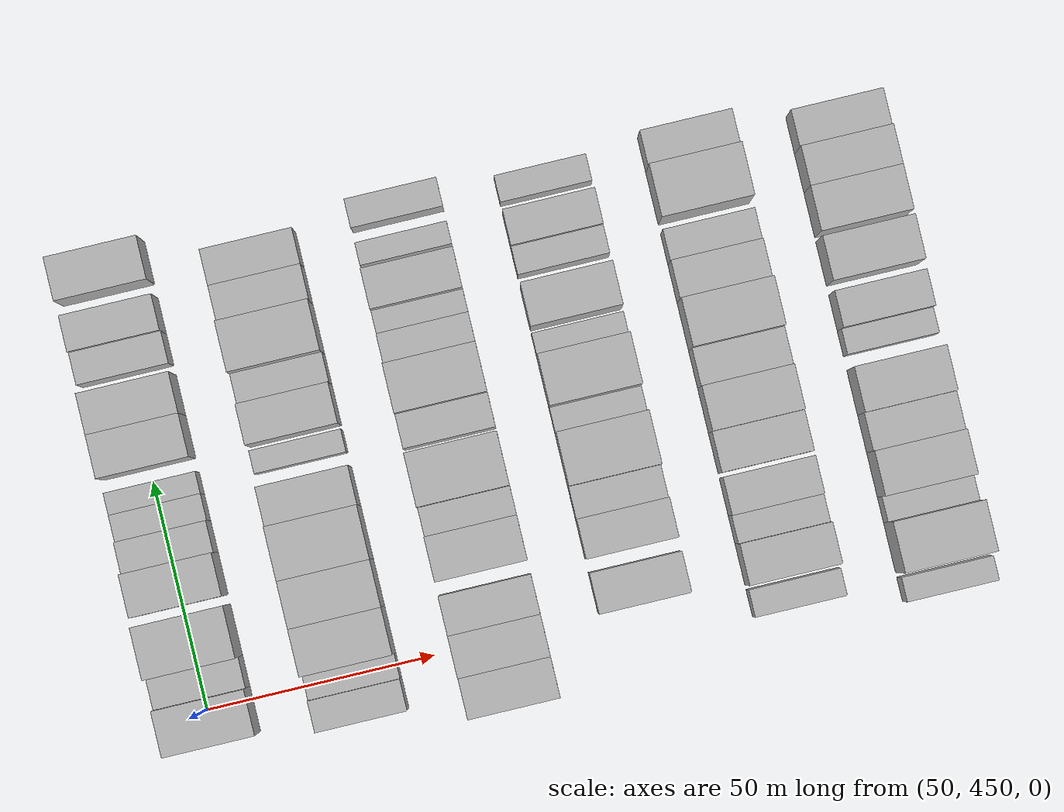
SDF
<sdf version="1.6">
 <world name="default">
  <model name="building_115">
   <static>1</static>
   <pose>50.0000 447.7930 0 0.000000 0.000000 0.000000</pose>
   <link name="link">
    <pose>0 0 10.50 0 0 0</pose>
    <collision name="collision"><geometry><box><size>20.0000 10.0180 21.0000</size></box></geometry></collision>
    <visual name="visual">
     <cast_shadows>0</cast_shadows>
     <geometry><box><size>20.0000 10.0180 21.0000</size></box></geometry>
     <material>
      <script>
       <uri>model://HANNAS_wall/materials/scripts</uri>
       <uri>model://HANNAS_wall/materials/textures</uri>
       <name>vrc/HANNAS_wall</name>
      </script>
     </material>
    </visual>
   </link>
  </model>
  <model name="building_116">
   <static>1</static>
   <pose>50.0000 456.1554 0 0.000000 0.000000 0.000000</pose>
   <link name="link">
    <pose>0 0 7.50 0 0 0</pose>
    <collision name="collision"><geometry><box><size>20.0000 6.7069 15.0000</size></box></geometry></collision>
    <visual name="visual">
     <cast_shadows>0</cast_shadows>
     <geometry><box><size>20.0000 6.7069 15.0000</size></box></geometry>
     <material>
      <script>
       <uri>model://HANNAS_wall/materials/scripts</uri>
       <uri>model://HANNAS_wall/materials/textures</uri>
       <name>vrc/HANNAS_wall</name>
      </script>
     </material>
    </visual>
   </link>
  </model>
  <model name="building_117">
   <static>1</static>
   <pose>50.0000 465.1629 0 0.000000 0.000000 0.000000</pose>
   <link name="link">
    <pose>0 0 12.00 0 0 0</pose>
    <collision name="collision"><geometry><box><size>20.0000 11.3081 24.0000</size></box></geometry></collision>
    <visual name="visual">
     <cast_shadows>0</cast_shadows>
     <geometry><box><size>20.0000 11.3081 24.0000</size></box></geometry>
     <material>
      <script>
       <uri>model://HANNAS_wall/materials/scripts</uri>
       <uri>model://HANNAS_wall/materials/textures</uri>
       <name>vrc/HANNAS_wall</name>
      </script>
     </material>
    </visual>
   </link>
  </model>
  <model name="building_118">
   <static>1</static>
   <pose>50.0000 477.5039 0 0.000000 0.000000 0.000000</pose>
   <link name="link">
    <pose>0 0 10.50 0 0 0</pose>
    <collision name="collision"><geometry><box><size>20.0000 9.3739 21.0000</size></box></geometry></collision>
    <visual name="visual">
     <cast_shadows>0</cast_shadows>
     <geometry><box><size>20.0000 9.3739 21.0000</size></box></geometry>
     <material>
      <script>
       <uri>model://HANNAS_wall/materials/scripts</uri>
       <uri>model://HANNAS_wall/materials/textures</uri>
       <name>vrc/HANNAS_wall</name>
      </script>
     </material>
    </visual>
   </link>
  </model>
  <model name="building_119">
   <static>1</static>
   <pose>50.0000 485.6570 0 0.000000 0.000000 0.000000</pose>
   <link name="link">
    <pose>0 0 7.50 0 0 0</pose>
    <collision name="collision"><geometry><box><size>20.0000 6.9324 15.0000</size></box></geometry></collision>
    <visual name="visual">
     <cast_shadows>0</cast_shadows>
     <geometry><box><size>20.0000 6.9324 15.0000</size></box></geometry>
     <material>
      <script>
       <uri>model://HANNAS_wall/materials/scripts</uri>
       <uri>model://HANNAS_wall/materials/textures</uri>
       <name>vrc/HANNAS_wall</name>
      </script>
     </material>
    </visual>
   </link>
  </model>
  <model name="building_120">
   <static>1</static>
   <pose>50.0000 492.0610 0 0.000000 0.000000 0.000000</pose>
   <link name="link">
    <pose>0 0 6.00 0 0 0</pose>
    <collision name="collision"><geometry><box><size>20.0000 5.8757 12.0000</size></box></geometry></collision>
    <visual name="visual">
     <cast_shadows>0</cast_shadows>
     <geometry><box><size>20.0000 5.8757 12.0000</size></box></geometry>
     <material>
      <script>
       <uri>model://HANNAS_wall/materials/scripts</uri>
       <uri>model://HANNAS_wall/materials/textures</uri>
       <name>vrc/HANNAS_wall</name>
      </script>
     </material>
    </visual>
   </link>
  </model>
  <model name="building_121">
   <static>1</static>
   <pose>50.0000 497.4059 0 0.000000 0.000000 0.000000</pose>
   <link name="link">
    <pose>0 0 6.00 0 0 0</pose>
    <collision name="collision"><geometry><box><size>20.0000 4.8141 12.0000</size></box></geometry></collision>
    <visual name="visual">
     <cast_shadows>0</cast_shadows>
     <geometry><box><size>20.0000 4.8141 12.0000</size></box></geometry>
     <material>
      <script>
       <uri>model://HANNAS_wall/materials/scripts</uri>
       <uri>model://HANNAS_wall/materials/textures</uri>
       <name>vrc/HANNAS_wall</name>
      </script>
     </material>
    </visual>
   </link>
  </model>
  <model name="building_122">
   <static>1</static>
   <pose>50.0000 507.5373 0 0.000000 0.000000 0.000000</pose>
   <link name="link">
    <pose>0 0 10.50 0 0 0</pose>
    <collision name="collision"><geometry><box><size>20.0000 9.4488 21.0000</size></box></geometry></collision>
    <visual name="visual">
     <cast_shadows>0</cast_shadows>
     <geometry><box><size>20.0000 9.4488 21.0000</size></box></geometry>
     <material>
      <script>
       <uri>model://HANNAS_wall/materials/scripts</uri>
       <uri>model://HANNAS_wall/materials/textures</uri>
       <name>vrc/HANNAS_wall</name>
      </script>
     </material>
    </visual>
   </link>
  </model>
  <model name="building_123">
   <static>1</static>
   <pose>50.0000 516.7333 0 0.000000 0.000000 0.000000</pose>
   <link name="link">
    <pose>0 0 10.50 0 0 0</pose>
    <collision name="collision"><geometry><box><size>20.0000 8.9432 21.0000</size></box></geometry></collision>
    <visual name="visual">
     <cast_shadows>0</cast_shadows>
     <geometry><box><size>20.0000 8.9432 21.0000</size></box></geometry>
     <material>
      <script>
       <uri>model://HANNAS_wall/materials/scripts</uri>
       <uri>model://HANNAS_wall/materials/textures</uri>
       <name>vrc/HANNAS_wall</name>
      </script>
     </material>
    </visual>
   </link>
  </model>
  <model name="building_124">
   <static>1</static>
   <pose>50.0000 526.7303 0 0.000000 0.000000 0.000000</pose>
   <link name="link">
    <pose>0 0 7.50 0 0 0</pose>
    <collision name="collision"><geometry><box><size>20.0000 7.0507 15.0000</size></box></geometry></collision>
    <visual name="visual">
     <cast_shadows>0</cast_shadows>
     <geometry><box><size>20.0000 7.0507 15.0000</size></box></geometry>
     <material>
      <script>
       <uri>model://HANNAS_wall/materials/scripts</uri>
       <uri>model://HANNAS_wall/materials/textures</uri>
       <name>vrc/HANNAS_wall</name>
      </script>
     </material>
    </visual>
   </link>
  </model>
  <model name="building_125">
   <static>1</static>
   <pose>50.0000 534.1992 0 0.000000 0.000000 0.000000</pose>
   <link name="link">
    <pose>0 0 9.00 0 0 0</pose>
    <collision name="collision"><geometry><box><size>20.0000 7.8872 18.0000</size></box></geometry></collision>
    <visual name="visual">
     <cast_shadows>0</cast_shadows>
     <geometry><box><size>20.0000 7.8872 18.0000</size></box></geometry>
     <material>
      <script>
       <uri>model://HANNAS_wall/materials/scripts</uri>
       <uri>model://HANNAS_wall/materials/textures</uri>
       <name>vrc/HANNAS_wall</name>
      </script>
     </material>
    </visual>
   </link>
  </model>
  <model name="building_126">
   <static>1</static>
   <pose>50.0000 545.8671 0 0.000000 0.000000 0.000000</pose>
   <link name="link">
    <pose>0 0 10.50 0 0 0</pose>
    <collision name="collision"><geometry><box><size>20.0000 9.4487 21.0000</size></box></geometry></collision>
    <visual name="visual">
     <cast_shadows>0</cast_shadows>
     <geometry><box><size>20.0000 9.4487 21.0000</size></box></geometry>
     <material>
      <script>
       <uri>model://HANNAS_wall/materials/scripts</uri>
       <uri>model://HANNAS_wall/materials/textures</uri>
       <name>vrc/HANNAS_wall</name>
      </script>
     </material>
    </visual>
   </link>
  </model>
  <model name="building_232">
   <static>1</static>
   <pose>82.0000 443.7060 0 0.000000 0.000000 0.000000</pose>
   <link name="link">
    <pose>0 0 7.50 0 0 0</pose>
    <collision name="collision"><geometry><box><size>20.0000 6.8889 15.0000</size></box></geometry></collision>
    <visual name="visual">
     <cast_shadows>0</cast_shadows>
     <geometry><box><size>20.0000 6.8889 15.0000</size></box></geometry>
     <material>
      <script>
       <uri>model://HANNAS_wall/materials/scripts</uri>
       <uri>model://HANNAS_wall/materials/textures</uri>
       <name>vrc/HANNAS_wall</name>
      </script>
     </material>
    </visual>
   </link>
  </model>
  <model name="building_233">
   <static>1</static>
   <pose>82.0000 449.8719 0 0.000000 0.000000 0.000000</pose>
   <link name="link">
    <pose>0 0 6.00 0 0 0</pose>
    <collision name="collision"><geometry><box><size>20.0000 5.4429 12.0000</size></box></geometry></collision>
    <visual name="visual">
     <cast_shadows>0</cast_shadows>
     <geometry><box><size>20.0000 5.4429 12.0000</size></box></geometry>
     <material>
      <script>
       <uri>model://HANNAS_wall/materials/scripts</uri>
       <uri>model://HANNAS_wall/materials/textures</uri>
       <name>vrc/HANNAS_wall</name>
      </script>
     </material>
    </visual>
   </link>
  </model>
  <model name="building_234">
   <static>1</static>
   <pose>82.0000 457.7127 0 0.000000 0.000000 0.000000</pose>
   <link name="link">
    <pose>0 0 12.00 0 0 0</pose>
    <collision name="collision"><geometry><box><size>20.0000 10.2387 24.0000</size></box></geometry></collision>
    <visual name="visual">
     <cast_shadows>0</cast_shadows>
     <geometry><box><size>20.0000 10.2387 24.0000</size></box></geometry>
     <material>
      <script>
       <uri>model://HANNAS_wall/materials/scripts</uri>
       <uri>model://HANNAS_wall/materials/textures</uri>
       <name>vrc/HANNAS_wall</name>
      </script>
     </material>
    </visual>
   </link>
  </model>
  <model name="building_235">
   <static>1</static>
   <pose>82.0000 467.9697 0 0.000000 0.000000 0.000000</pose>
   <link name="link">
    <pose>0 0 12.00 0 0 0</pose>
    <collision name="collision"><geometry><box><size>20.0000 10.2752 24.0000</size></box></geometry></collision>
    <visual name="visual">
     <cast_shadows>0</cast_shadows>
     <geometry><box><size>20.0000 10.2752 24.0000</size></box></geometry>
     <material>
      <script>
       <uri>model://HANNAS_wall/materials/scripts</uri>
       <uri>model://HANNAS_wall/materials/textures</uri>
       <name>vrc/HANNAS_wall</name>
      </script>
     </material>
    </visual>
   </link>
  </model>
  <model name="building_236">
   <static>1</static>
   <pose>82.0000 478.9772 0 0.000000 0.000000 0.000000</pose>
   <link name="link">
    <pose>0 0 12.00 0 0 0</pose>
    <collision name="collision"><geometry><box><size>20.0000 11.7399 24.0000</size></box></geometry></collision>
    <visual name="visual">
     <cast_shadows>0</cast_shadows>
     <geometry><box><size>20.0000 11.7399 24.0000</size></box></geometry>
     <material>
      <script>
       <uri>model://HANNAS_wall/materials/scripts</uri>
       <uri>model://HANNAS_wall/materials/textures</uri>
       <name>vrc/HANNAS_wall</name>
      </script>
     </material>
    </visual>
   </link>
  </model>
  <model name="building_237">
   <static>1</static>
   <pose>82.0000 489.1119 0 0.000000 0.000000 0.000000</pose>
   <link name="link">
    <pose>0 0 10.50 0 0 0</pose>
    <collision name="collision"><geometry><box><size>20.0000 8.5294 21.0000</size></box></geometry></collision>
    <visual name="visual">
     <cast_shadows>0</cast_shadows>
     <geometry><box><size>20.0000 8.5294 21.0000</size></box></geometry>
     <material>
      <script>
       <uri>model://HANNAS_wall/materials/scripts</uri>
       <uri>model://HANNAS_wall/materials/textures</uri>
       <name>vrc/HANNAS_wall</name>
      </script>
     </material>
    </visual>
   </link>
  </model>
  <model name="building_238">
   <static>1</static>
   <pose>82.0000 498.8895 0 0.000000 0.000000 0.000000</pose>
   <link name="link">
    <pose>0 0 6.00 0 0 0</pose>
    <collision name="collision"><geometry><box><size>20.0000 5.0259 12.0000</size></box></geometry></collision>
    <visual name="visual">
     <cast_shadows>0</cast_shadows>
     <geometry><box><size>20.0000 5.0259 12.0000</size></box></geometry>
     <material>
      <script>
       <uri>model://HANNAS_wall/materials/scripts</uri>
       <uri>model://HANNAS_wall/materials/textures</uri>
       <name>vrc/HANNAS_wall</name>
      </script>
     </material>
    </visual>
   </link>
  </model>
  <model name="building_239">
   <static>1</static>
   <pose>82.0000 506.8563 0 0.000000 0.000000 0.000000</pose>
   <link name="link">
    <pose>0 0 10.50 0 0 0</pose>
    <collision name="collision"><geometry><box><size>20.0000 8.9076 21.0000</size></box></geometry></collision>
    <visual name="visual">
     <cast_shadows>0</cast_shadows>
     <geometry><box><size>20.0000 8.9076 21.0000</size></box></geometry>
     <material>
      <script>
       <uri>model://HANNAS_wall/materials/scripts</uri>
       <uri>model://HANNAS_wall/materials/textures</uri>
       <name>vrc/HANNAS_wall</name>
      </script>
     </material>
    </visual>
   </link>
  </model>
  <model name="building_240">
   <static>1</static>
   <pose>82.0000 514.6700 0 0.000000 0.000000 0.000000</pose>
   <link name="link">
    <pose>0 0 7.50 0 0 0</pose>
    <collision name="collision"><geometry><box><size>20.0000 6.7200 15.0000</size></box></geometry></collision>
    <visual name="visual">
     <cast_shadows>0</cast_shadows>
     <geometry><box><size>20.0000 6.7200 15.0000</size></box></geometry>
     <material>
      <script>
       <uri>model://HANNAS_wall/materials/scripts</uri>
       <uri>model://HANNAS_wall/materials/textures</uri>
       <name>vrc/HANNAS_wall</name>
      </script>
     </material>
    </visual>
   </link>
  </model>
  <model name="building_241">
   <static>1</static>
   <pose>82.0000 523.5480 0 0.000000 0.000000 0.000000</pose>
   <link name="link">
    <pose>0 0 12.00 0 0 0</pose>
    <collision name="collision"><geometry><box><size>20.0000 11.0359 24.0000</size></box></geometry></collision>
    <visual name="visual">
     <cast_shadows>0</cast_shadows>
     <geometry><box><size>20.0000 11.0359 24.0000</size></box></geometry>
     <material>
      <script>
       <uri>model://HANNAS_wall/materials/scripts</uri>
       <uri>model://HANNAS_wall/materials/textures</uri>
       <name>vrc/HANNAS_wall</name>
      </script>
     </material>
    </visual>
   </link>
  </model>
  <model name="building_242">
   <static>1</static>
   <pose>82.0000 533.0374 0 0.000000 0.000000 0.000000</pose>
   <link name="link">
    <pose>0 0 9.00 0 0 0</pose>
    <collision name="collision"><geometry><box><size>20.0000 7.9430 18.0000</size></box></geometry></collision>
    <visual name="visual">
     <cast_shadows>0</cast_shadows>
     <geometry><box><size>20.0000 7.9430 18.0000</size></box></geometry>
     <material>
      <script>
       <uri>model://HANNAS_wall/materials/scripts</uri>
       <uri>model://HANNAS_wall/materials/textures</uri>
       <name>vrc/HANNAS_wall</name>
      </script>
     </material>
    </visual>
   </link>
  </model>
  <model name="building_243">
   <static>1</static>
   <pose>82.0000 540.9308 0 0.000000 0.000000 0.000000</pose>
   <link name="link">
    <pose>0 0 9.00 0 0 0</pose>
    <collision name="collision"><geometry><box><size>20.0000 7.8439 18.0000</size></box></geometry></collision>
    <visual name="visual">
     <cast_shadows>0</cast_shadows>
     <geometry><box><size>20.0000 7.8439 18.0000</size></box></geometry>
     <material>
      <script>
       <uri>model://HANNAS_wall/materials/scripts</uri>
       <uri>model://HANNAS_wall/materials/textures</uri>
       <name>vrc/HANNAS_wall</name>
      </script>
     </material>
    </visual>
   </link>
  </model>
  <model name="building_349">
   <static>1</static>
   <pose>114.0000 440.0185 0 0.000000 0.000000 0.000000</pose>
   <link name="link">
    <pose>0 0 9.00 0 0 0</pose>
    <collision name="collision"><geometry><box><size>20.0000 8.9745 18.0000</size></box></geometry></collision>
    <visual name="visual">
     <cast_shadows>0</cast_shadows>
     <geometry><box><size>20.0000 8.9745 18.0000</size></box></geometry>
     <material>
      <script>
       <uri>model://HANNAS_wall/materials/scripts</uri>
       <uri>model://HANNAS_wall/materials/textures</uri>
       <name>vrc/HANNAS_wall</name>
      </script>
     </material>
    </visual>
   </link>
  </model>
  <model name="building_350">
   <static>1</static>
   <pose>114.0000 449.0753 0 0.000000 0.000000 0.000000</pose>
   <link name="link">
    <pose>0 0 10.50 0 0 0</pose>
    <collision name="collision"><geometry><box><size>20.0000 9.1390 21.0000</size></box></geometry></collision>
    <visual name="visual">
     <cast_shadows>0</cast_shadows>
     <geometry><box><size>20.0000 9.1390 21.0000</size></box></geometry>
     <material>
      <script>
       <uri>model://HANNAS_wall/materials/scripts</uri>
       <uri>model://HANNAS_wall/materials/textures</uri>
       <name>vrc/HANNAS_wall</name>
      </script>
     </material>
    </visual>
   </link>
  </model>
  <model name="building_351">
   <static>1</static>
   <pose>114.0000 457.9483 0 0.000000 0.000000 0.000000</pose>
   <link name="link">
    <pose>0 0 10.50 0 0 0</pose>
    <collision name="collision"><geometry><box><size>20.0000 8.6071 21.0000</size></box></geometry></collision>
    <visual name="visual">
     <cast_shadows>0</cast_shadows>
     <geometry><box><size>20.0000 8.6071 21.0000</size></box></geometry>
     <material>
      <script>
       <uri>model://HANNAS_wall/materials/scripts</uri>
       <uri>model://HANNAS_wall/materials/textures</uri>
       <name>vrc/HANNAS_wall</name>
      </script>
     </material>
    </visual>
   </link>
  </model>
  <model name="building_352">
   <static>1</static>
   <pose>114.0000 470.1345 0 0.000000 0.000000 0.000000</pose>
   <link name="link">
    <pose>0 0 10.50 0 0 0</pose>
    <collision name="collision"><geometry><box><size>20.0000 9.7652 21.0000</size></box></geometry></collision>
    <visual name="visual">
     <cast_shadows>0</cast_shadows>
     <geometry><box><size>20.0000 9.7652 21.0000</size></box></geometry>
     <material>
      <script>
       <uri>model://HANNAS_wall/materials/scripts</uri>
       <uri>model://HANNAS_wall/materials/textures</uri>
       <name>vrc/HANNAS_wall</name>
      </script>
     </material>
    </visual>
   </link>
  </model>
  <model name="building_353">
   <static>1</static>
   <pose>114.0000 478.1708 0 0.000000 0.000000 0.000000</pose>
   <link name="link">
    <pose>0 0 7.50 0 0 0</pose>
    <collision name="collision"><geometry><box><size>20.0000 6.3075 15.0000</size></box></geometry></collision>
    <visual name="visual">
     <cast_shadows>0</cast_shadows>
     <geometry><box><size>20.0000 6.3075 15.0000</size></box></geometry>
     <material>
      <script>
       <uri>model://HANNAS_wall/materials/scripts</uri>
       <uri>model://HANNAS_wall/materials/textures</uri>
       <name>vrc/HANNAS_wall</name>
      </script>
     </material>
    </visual>
   </link>
  </model>
  <model name="building_354">
   <static>1</static>
   <pose>114.0000 487.1837 0 0.000000 0.000000 0.000000</pose>
   <link name="link">
    <pose>0 0 12.00 0 0 0</pose>
    <collision name="collision"><geometry><box><size>20.0000 11.7182 24.0000</size></box></geometry></collision>
    <visual name="visual">
     <cast_shadows>0</cast_shadows>
     <geometry><box><size>20.0000 11.7182 24.0000</size></box></geometry>
     <material>
      <script>
       <uri>model://HANNAS_wall/materials/scripts</uri>
       <uri>model://HANNAS_wall/materials/textures</uri>
       <name>vrc/HANNAS_wall</name>
      </script>
     </material>
    </visual>
   </link>
  </model>
  <model name="building_355">
   <static>1</static>
   <pose>114.0000 497.7774 0 0.000000 0.000000 0.000000</pose>
   <link name="link">
    <pose>0 0 9.00 0 0 0</pose>
    <collision name="collision"><geometry><box><size>20.0000 7.4693 18.0000</size></box></geometry></collision>
    <visual name="visual">
     <cast_shadows>0</cast_shadows>
     <geometry><box><size>20.0000 7.4693 18.0000</size></box></geometry>
     <material>
      <script>
       <uri>model://HANNAS_wall/materials/scripts</uri>
       <uri>model://HANNAS_wall/materials/textures</uri>
       <name>vrc/HANNAS_wall</name>
      </script>
     </material>
    </visual>
   </link>
  </model>
  <model name="building_356">
   <static>1</static>
   <pose>114.0000 506.9048 0 0.000000 0.000000 0.000000</pose>
   <link name="link">
    <pose>0 0 12.00 0 0 0</pose>
    <collision name="collision"><geometry><box><size>20.0000 10.7856 24.0000</size></box></geometry></collision>
    <visual name="visual">
     <cast_shadows>0</cast_shadows>
     <geometry><box><size>20.0000 10.7856 24.0000</size></box></geometry>
     <material>
      <script>
       <uri>model://HANNAS_wall/materials/scripts</uri>
       <uri>model://HANNAS_wall/materials/textures</uri>
       <name>vrc/HANNAS_wall</name>
      </script>
     </material>
    </visual>
   </link>
  </model>
  <model name="building_357">
   <static>1</static>
   <pose>114.0000 515.6930 0 0.000000 0.000000 0.000000</pose>
   <link name="link">
    <pose>0 0 7.50 0 0 0</pose>
    <collision name="collision"><geometry><box><size>20.0000 6.7907 15.0000</size></box></geometry></collision>
    <visual name="visual">
     <cast_shadows>0</cast_shadows>
     <geometry><box><size>20.0000 6.7907 15.0000</size></box></geometry>
     <material>
      <script>
       <uri>model://HANNAS_wall/materials/scripts</uri>
       <uri>model://HANNAS_wall/materials/textures</uri>
       <name>vrc/HANNAS_wall</name>
      </script>
     </material>
    </visual>
   </link>
  </model>
  <model name="building_358">
   <static>1</static>
   <pose>114.0000 521.6629 0 0.000000 0.000000 0.000000</pose>
   <link name="link">
    <pose>0 0 6.00 0 0 0</pose>
    <collision name="collision"><geometry><box><size>20.0000 5.1493 12.0000</size></box></geometry></collision>
    <visual name="visual">
     <cast_shadows>0</cast_shadows>
     <geometry><box><size>20.0000 5.1493 12.0000</size></box></geometry>
     <material>
      <script>
       <uri>model://HANNAS_wall/materials/scripts</uri>
       <uri>model://HANNAS_wall/materials/textures</uri>
       <name>vrc/HANNAS_wall</name>
      </script>
     </material>
    </visual>
   </link>
  </model>
  <model name="building_359">
   <static>1</static>
   <pose>114.0000 528.6605 0 0.000000 0.000000 0.000000</pose>
   <link name="link">
    <pose>0 0 9.00 0 0 0</pose>
    <collision name="collision"><geometry><box><size>20.0000 8.8458 18.0000</size></box></geometry></collision>
    <visual name="visual">
     <cast_shadows>0</cast_shadows>
     <geometry><box><size>20.0000 8.8458 18.0000</size></box></geometry>
     <material>
      <script>
       <uri>model://HANNAS_wall/materials/scripts</uri>
       <uri>model://HANNAS_wall/materials/textures</uri>
       <name>vrc/HANNAS_wall</name>
      </script>
     </material>
    </visual>
   </link>
  </model>
  <model name="building_360">
   <static>1</static>
   <pose>114.0000 536.5666 0 0.000000 0.000000 0.000000</pose>
   <link name="link">
    <pose>0 0 6.00 0 0 0</pose>
    <collision name="collision"><geometry><box><size>20.0000 4.9664 12.0000</size></box></geometry></collision>
    <visual name="visual">
     <cast_shadows>0</cast_shadows>
     <geometry><box><size>20.0000 4.9664 12.0000</size></box></geometry>
     <material>
      <script>
       <uri>model://HANNAS_wall/materials/scripts</uri>
       <uri>model://HANNAS_wall/materials/textures</uri>
       <name>vrc/HANNAS_wall</name>
      </script>
     </material>
    </visual>
   </link>
  </model>
  <model name="building_361">
   <static>1</static>
   <pose>114.0000 545.1914 0 0.000000 0.000000 0.000000</pose>
   <link name="link">
    <pose>0 0 7.50 0 0 0</pose>
    <collision name="collision"><geometry><box><size>20.0000 6.2832 15.0000</size></box></geometry></collision>
    <visual name="visual">
     <cast_shadows>0</cast_shadows>
     <geometry><box><size>20.0000 6.2832 15.0000</size></box></geometry>
     <material>
      <script>
       <uri>model://HANNAS_wall/materials/scripts</uri>
       <uri>model://HANNAS_wall/materials/textures</uri>
       <name>vrc/HANNAS_wall</name>
      </script>
     </material>
    </visual>
   </link>
  </model>
  <model name="building_472">
   <static>1</static>
   <pose>146.0000 455.0961 0 0.000000 0.000000 0.000000</pose>
   <link name="link">
    <pose>0 0 9.00 0 0 0</pose>
    <collision name="collision"><geometry><box><size>20.0000 8.9204 18.0000</size></box></geometry></collision>
    <visual name="visual">
     <cast_shadows>0</cast_shadows>
     <geometry><box><size>20.0000 8.9204 18.0000</size></box></geometry>
     <material>
      <script>
       <uri>model://HANNAS_wall/materials/scripts</uri>
       <uri>model://HANNAS_wall/materials/textures</uri>
       <name>vrc/HANNAS_wall</name>
      </script>
     </material>
    </visual>
   </link>
  </model>
  <model name="building_473">
   <static>1</static>
   <pose>146.0000 466.8721 0 0.000000 0.000000 0.000000</pose>
   <link name="link">
    <pose>0 0 10.50 0 0 0</pose>
    <collision name="collision"><geometry><box><size>20.0000 8.6316 21.0000</size></box></geometry></collision>
    <visual name="visual">
     <cast_shadows>0</cast_shadows>
     <geometry><box><size>20.0000 8.6316 21.0000</size></box></geometry>
     <material>
      <script>
       <uri>model://HANNAS_wall/materials/scripts</uri>
       <uri>model://HANNAS_wall/materials/textures</uri>
       <name>vrc/HANNAS_wall</name>
      </script>
     </material>
    </visual>
   </link>
  </model>
  <model name="building_474">
   <static>1</static>
   <pose>146.0000 474.7242 0 0.000000 0.000000 0.000000</pose>
   <link name="link">
    <pose>0 0 7.50 0 0 0</pose>
    <collision name="collision"><geometry><box><size>20.0000 7.0726 15.0000</size></box></geometry></collision>
    <visual name="visual">
     <cast_shadows>0</cast_shadows>
     <geometry><box><size>20.0000 7.0726 15.0000</size></box></geometry>
     <material>
      <script>
       <uri>model://HANNAS_wall/materials/scripts</uri>
       <uri>model://HANNAS_wall/materials/textures</uri>
       <name>vrc/HANNAS_wall</name>
      </script>
     </material>
    </visual>
   </link>
  </model>
  <model name="building_475">
   <static>1</static>
   <pose>146.0000 484.0739 0 0.000000 0.000000 0.000000</pose>
   <link name="link">
    <pose>0 0 12.00 0 0 0</pose>
    <collision name="collision"><geometry><box><size>20.0000 11.6270 24.0000</size></box></geometry></collision>
    <visual name="visual">
     <cast_shadows>0</cast_shadows>
     <geometry><box><size>20.0000 11.6270 24.0000</size></box></geometry>
     <material>
      <script>
       <uri>model://HANNAS_wall/materials/scripts</uri>
       <uri>model://HANNAS_wall/materials/textures</uri>
       <name>vrc/HANNAS_wall</name>
      </script>
     </material>
    </visual>
   </link>
  </model>
  <model name="building_476">
   <static>1</static>
   <pose>146.0000 492.6973 0 0.000000 0.000000 0.000000</pose>
   <link name="link">
    <pose>0 0 6.00 0 0 0</pose>
    <collision name="collision"><geometry><box><size>20.0000 5.6198 12.0000</size></box></geometry></collision>
    <visual name="visual">
     <cast_shadows>0</cast_shadows>
     <geometry><box><size>20.0000 5.6198 12.0000</size></box></geometry>
     <material>
      <script>
       <uri>model://HANNAS_wall/materials/scripts</uri>
       <uri>model://HANNAS_wall/materials/textures</uri>
       <name>vrc/HANNAS_wall</name>
      </script>
     </material>
    </visual>
   </link>
  </model>
  <model name="building_477">
   <static>1</static>
   <pose>146.0000 501.1041 0 0.000000 0.000000 0.000000</pose>
   <link name="link">
    <pose>0 0 12.00 0 0 0</pose>
    <collision name="collision"><geometry><box><size>20.0000 11.1938 24.0000</size></box></geometry></collision>
    <visual name="visual">
     <cast_shadows>0</cast_shadows>
     <geometry><box><size>20.0000 11.1938 24.0000</size></box></geometry>
     <material>
      <script>
       <uri>model://HANNAS_wall/materials/scripts</uri>
       <uri>model://HANNAS_wall/materials/textures</uri>
       <name>vrc/HANNAS_wall</name>
      </script>
     </material>
    </visual>
   </link>
  </model>
  <model name="building_478">
   <static>1</static>
   <pose>146.0000 509.2010 0 0.000000 0.000000 0.000000</pose>
   <link name="link">
    <pose>0 0 6.00 0 0 0</pose>
    <collision name="collision"><geometry><box><size>20.0000 4.9999 12.0000</size></box></geometry></collision>
    <visual name="visual">
     <cast_shadows>0</cast_shadows>
     <geometry><box><size>20.0000 4.9999 12.0000</size></box></geometry>
     <material>
      <script>
       <uri>model://HANNAS_wall/materials/scripts</uri>
       <uri>model://HANNAS_wall/materials/textures</uri>
       <name>vrc/HANNAS_wall</name>
      </script>
     </material>
    </visual>
   </link>
  </model>
  <model name="building_479">
   <static>1</static>
   <pose>146.0000 517.4627 0 0.000000 0.000000 0.000000</pose>
   <link name="link">
    <pose>0 0 10.50 0 0 0</pose>
    <collision name="collision"><geometry><box><size>20.0000 9.5234 21.0000</size></box></geometry></collision>
    <visual name="visual">
     <cast_shadows>0</cast_shadows>
     <geometry><box><size>20.0000 9.5234 21.0000</size></box></geometry>
     <material>
      <script>
       <uri>model://HANNAS_wall/materials/scripts</uri>
       <uri>model://HANNAS_wall/materials/textures</uri>
       <name>vrc/HANNAS_wall</name>
      </script>
     </material>
    </visual>
   </link>
  </model>
  <model name="building_480">
   <static>1</static>
   <pose>146.0000 527.3061 0 0.000000 0.000000 0.000000</pose>
   <link name="link">
    <pose>0 0 7.50 0 0 0</pose>
    <collision name="collision"><geometry><box><size>20.0000 6.1635 15.0000</size></box></geometry></collision>
    <visual name="visual">
     <cast_shadows>0</cast_shadows>
     <geometry><box><size>20.0000 6.1635 15.0000</size></box></geometry>
     <material>
      <script>
       <uri>model://HANNAS_wall/materials/scripts</uri>
       <uri>model://HANNAS_wall/materials/textures</uri>
       <name>vrc/HANNAS_wall</name>
      </script>
     </material>
    </visual>
   </link>
  </model>
  <model name="building_481">
   <static>1</static>
   <pose>146.0000 534.3037 0 0.000000 0.000000 0.000000</pose>
   <link name="link">
    <pose>0 0 9.00 0 0 0</pose>
    <collision name="collision"><geometry><box><size>20.0000 7.8316 18.0000</size></box></geometry></collision>
    <visual name="visual">
     <cast_shadows>0</cast_shadows>
     <geometry><box><size>20.0000 7.8316 18.0000</size></box></geometry>
     <material>
      <script>
       <uri>model://HANNAS_wall/materials/scripts</uri>
       <uri>model://HANNAS_wall/materials/textures</uri>
       <name>vrc/HANNAS_wall</name>
      </script>
     </material>
    </visual>
   </link>
  </model>
  <model name="building_482">
   <static>1</static>
   <pose>146.0000 543.1347 0 0.000000 0.000000 0.000000</pose>
   <link name="link">
    <pose>0 0 6.00 0 0 0</pose>
    <collision name="collision"><geometry><box><size>20.0000 5.8304 12.0000</size></box></geometry></collision>
    <visual name="visual">
     <cast_shadows>0</cast_shadows>
     <geometry><box><size>20.0000 5.8304 12.0000</size></box></geometry>
     <material>
      <script>
       <uri>model://HANNAS_wall/materials/scripts</uri>
       <uri>model://HANNAS_wall/materials/textures</uri>
       <name>vrc/HANNAS_wall</name>
      </script>
     </material>
    </visual>
   </link>
  </model>
  <model name="building_592">
   <static>1</static>
   <pose>178.0000 445.2060 0 0.000000 0.000000 0.000000</pose>
   <link name="link">
    <pose>0 0 6.00 0 0 0</pose>
    <collision name="collision"><geometry><box><size>20.0000 5.9632 12.0000</size></box></geometry></collision>
    <visual name="visual">
     <cast_shadows>0</cast_shadows>
     <geometry><box><size>20.0000 5.9632 12.0000</size></box></geometry>
     <material>
      <script>
       <uri>model://HANNAS_wall/materials/scripts</uri>
       <uri>model://HANNAS_wall/materials/textures</uri>
       <name>vrc/HANNAS_wall</name>
      </script>
     </material>
    </visual>
   </link>
  </model>
  <model name="building_593">
   <static>1</static>
   <pose>178.0000 453.7036 0 0.000000 0.000000 0.000000</pose>
   <link name="link">
    <pose>0 0 10.50 0 0 0</pose>
    <collision name="collision"><geometry><box><size>20.0000 9.0320 21.0000</size></box></geometry></collision>
    <visual name="visual">
     <cast_shadows>0</cast_shadows>
     <geometry><box><size>20.0000 9.0320 21.0000</size></box></geometry>
     <material>
      <script>
       <uri>model://HANNAS_wall/materials/scripts</uri>
       <uri>model://HANNAS_wall/materials/textures</uri>
       <name>vrc/HANNAS_wall</name>
      </script>
     </material>
    </visual>
   </link>
  </model>
  <model name="building_594">
   <static>1</static>
   <pose>178.0000 461.2689 0 0.000000 0.000000 0.000000</pose>
   <link name="link">
    <pose>0 0 7.50 0 0 0</pose>
    <collision name="collision"><geometry><box><size>20.0000 6.0986 15.0000</size></box></geometry></collision>
    <visual name="visual">
     <cast_shadows>0</cast_shadows>
     <geometry><box><size>20.0000 6.0986 15.0000</size></box></geometry>
     <material>
      <script>
       <uri>model://HANNAS_wall/materials/scripts</uri>
       <uri>model://HANNAS_wall/materials/textures</uri>
       <name>vrc/HANNAS_wall</name>
      </script>
     </material>
    </visual>
   </link>
  </model>
  <model name="building_595">
   <static>1</static>
   <pose>178.0000 468.4613 0 0.000000 0.000000 0.000000</pose>
   <link name="link">
    <pose>0 0 9.00 0 0 0</pose>
    <collision name="collision"><geometry><box><size>20.0000 8.2863 18.0000</size></box></geometry></collision>
    <visual name="visual">
     <cast_shadows>0</cast_shadows>
     <geometry><box><size>20.0000 8.2863 18.0000</size></box></geometry>
     <material>
      <script>
       <uri>model://HANNAS_wall/materials/scripts</uri>
       <uri>model://HANNAS_wall/materials/textures</uri>
       <name>vrc/HANNAS_wall</name>
      </script>
     </material>
    </visual>
   </link>
  </model>
  <model name="building_596">
   <static>1</static>
   <pose>178.0000 478.0362 0 0.000000 0.000000 0.000000</pose>
   <link name="link">
    <pose>0 0 9.00 0 0 0</pose>
    <collision name="collision"><geometry><box><size>20.0000 8.8634 18.0000</size></box></geometry></collision>
    <visual name="visual">
     <cast_shadows>0</cast_shadows>
     <geometry><box><size>20.0000 8.8634 18.0000</size></box></geometry>
     <material>
      <script>
       <uri>model://HANNAS_wall/materials/scripts</uri>
       <uri>model://HANNAS_wall/materials/textures</uri>
       <name>vrc/HANNAS_wall</name>
      </script>
     </material>
    </visual>
   </link>
  </model>
  <model name="building_597">
   <static>1</static>
   <pose>178.0000 487.3755 0 0.000000 0.000000 0.000000</pose>
   <link name="link">
    <pose>0 0 10.50 0 0 0</pose>
    <collision name="collision"><geometry><box><size>20.0000 9.8154 21.0000</size></box></geometry></collision>
    <visual name="visual">
     <cast_shadows>0</cast_shadows>
     <geometry><box><size>20.0000 9.8154 21.0000</size></box></geometry>
     <material>
      <script>
       <uri>model://HANNAS_wall/materials/scripts</uri>
       <uri>model://HANNAS_wall/materials/textures</uri>
       <name>vrc/HANNAS_wall</name>
      </script>
     </material>
    </visual>
   </link>
  </model>
  <model name="building_598">
   <static>1</static>
   <pose>178.0000 496.4007 0 0.000000 0.000000 0.000000</pose>
   <link name="link">
    <pose>0 0 9.00 0 0 0</pose>
    <collision name="collision"><geometry><box><size>20.0000 8.2350 18.0000</size></box></geometry></collision>
    <visual name="visual">
     <cast_shadows>0</cast_shadows>
     <geometry><box><size>20.0000 8.2350 18.0000</size></box></geometry>
     <material>
      <script>
       <uri>model://HANNAS_wall/materials/scripts</uri>
       <uri>model://HANNAS_wall/materials/textures</uri>
       <name>vrc/HANNAS_wall</name>
      </script>
     </material>
    </visual>
   </link>
  </model>
  <model name="building_599">
   <static>1</static>
   <pose>178.0000 505.8217 0 0.000000 0.000000 0.000000</pose>
   <link name="link">
    <pose>0 0 12.00 0 0 0</pose>
    <collision name="collision"><geometry><box><size>20.0000 10.6070 24.0000</size></box></geometry></collision>
    <visual name="visual">
     <cast_shadows>0</cast_shadows>
     <geometry><box><size>20.0000 10.6070 24.0000</size></box></geometry>
     <material>
      <script>
       <uri>model://HANNAS_wall/materials/scripts</uri>
       <uri>model://HANNAS_wall/materials/textures</uri>
       <name>vrc/HANNAS_wall</name>
      </script>
     </material>
    </visual>
   </link>
  </model>
  <model name="building_600">
   <static>1</static>
   <pose>178.0000 515.3519 0 0.000000 0.000000 0.000000</pose>
   <link name="link">
    <pose>0 0 9.00 0 0 0</pose>
    <collision name="collision"><geometry><box><size>20.0000 8.4535 18.0000</size></box></geometry></collision>
    <visual name="visual">
     <cast_shadows>0</cast_shadows>
     <geometry><box><size>20.0000 8.4535 18.0000</size></box></geometry>
     <material>
      <script>
       <uri>model://HANNAS_wall/materials/scripts</uri>
       <uri>model://HANNAS_wall/materials/textures</uri>
       <name>vrc/HANNAS_wall</name>
      </script>
     </material>
    </visual>
   </link>
  </model>
  <model name="building_601">
   <static>1</static>
   <pose>178.0000 523.0134 0 0.000000 0.000000 0.000000</pose>
   <link name="link">
    <pose>0 0 7.50 0 0 0</pose>
    <collision name="collision"><geometry><box><size>20.0000 6.8694 15.0000</size></box></geometry></collision>
    <visual name="visual">
     <cast_shadows>0</cast_shadows>
     <geometry><box><size>20.0000 6.8694 15.0000</size></box></geometry>
     <material>
      <script>
       <uri>model://HANNAS_wall/materials/scripts</uri>
       <uri>model://HANNAS_wall/materials/textures</uri>
       <name>vrc/HANNAS_wall</name>
      </script>
     </material>
    </visual>
   </link>
  </model>
  <model name="building_602">
   <static>1</static>
   <pose>178.0000 534.1976 0 0.000000 0.000000 0.000000</pose>
   <link name="link">
    <pose>0 0 12.00 0 0 0</pose>
    <collision name="collision"><geometry><box><size>20.0000 11.4990 24.0000</size></box></geometry></collision>
    <visual name="visual">
     <cast_shadows>0</cast_shadows>
     <geometry><box><size>20.0000 11.4990 24.0000</size></box></geometry>
     <material>
      <script>
       <uri>model://HANNAS_wall/materials/scripts</uri>
       <uri>model://HANNAS_wall/materials/textures</uri>
       <name>vrc/HANNAS_wall</name>
      </script>
     </material>
    </visual>
   </link>
  </model>
  <model name="building_603">
   <static>1</static>
   <pose>178.0000 543.8190 0 0.000000 0.000000 0.000000</pose>
   <link name="link">
    <pose>0 0 9.00 0 0 0</pose>
    <collision name="collision"><geometry><box><size>20.0000 7.7439 18.0000</size></box></geometry></collision>
    <visual name="visual">
     <cast_shadows>0</cast_shadows>
     <geometry><box><size>20.0000 7.7439 18.0000</size></box></geometry>
     <material>
      <script>
       <uri>model://HANNAS_wall/materials/scripts</uri>
       <uri>model://HANNAS_wall/materials/textures</uri>
       <name>vrc/HANNAS_wall</name>
      </script>
     </material>
    </visual>
   </link>
  </model>
  <model name="building_706">
   <static>1</static>
   <pose>210.0000 440.5711 0 0.000000 0.000000 0.000000</pose>
   <link name="link">
    <pose>0 0 6.00 0 0 0</pose>
    <collision name="collision"><geometry><box><size>20.0000 5.3425 12.0000</size></box></geometry></collision>
    <visual name="visual">
     <cast_shadows>0</cast_shadows>
     <geometry><box><size>20.0000 5.3425 12.0000</size></box></geometry>
     <material>
      <script>
       <uri>model://HANNAS_wall/materials/scripts</uri>
       <uri>model://HANNAS_wall/materials/textures</uri>
       <name>vrc/HANNAS_wall</name>
      </script>
     </material>
    </visual>
   </link>
  </model>
  <model name="building_707">
   <static>1</static>
   <pose>210.0000 449.7650 0 0.000000 0.000000 0.000000</pose>
   <link name="link">
    <pose>0 0 12.00 0 0 0</pose>
    <collision name="collision"><geometry><box><size>20.0000 11.0453 24.0000</size></box></geometry></collision>
    <visual name="visual">
     <cast_shadows>0</cast_shadows>
     <geometry><box><size>20.0000 11.0453 24.0000</size></box></geometry>
     <material>
      <script>
       <uri>model://HANNAS_wall/materials/scripts</uri>
       <uri>model://HANNAS_wall/materials/textures</uri>
       <name>vrc/HANNAS_wall</name>
      </script>
     </material>
    </visual>
   </link>
  </model>
  <model name="building_708">
   <static>1</static>
   <pose>210.0000 458.0558 0 0.000000 0.000000 0.000000</pose>
   <link name="link">
    <pose>0 0 6.00 0 0 0</pose>
    <collision name="collision"><geometry><box><size>20.0000 5.5364 12.0000</size></box></geometry></collision>
    <visual name="visual">
     <cast_shadows>0</cast_shadows>
     <geometry><box><size>20.0000 5.5364 12.0000</size></box></geometry>
     <material>
      <script>
       <uri>model://HANNAS_wall/materials/scripts</uri>
       <uri>model://HANNAS_wall/materials/textures</uri>
       <name>vrc/HANNAS_wall</name>
      </script>
     </material>
    </visual>
   </link>
  </model>
  <model name="building_709">
   <static>1</static>
   <pose>210.0000 465.7047 0 0.000000 0.000000 0.000000</pose>
   <link name="link">
    <pose>0 0 10.50 0 0 0</pose>
    <collision name="collision"><geometry><box><size>20.0000 9.7614 21.0000</size></box></geometry></collision>
    <visual name="visual">
     <cast_shadows>0</cast_shadows>
     <geometry><box><size>20.0000 9.7614 21.0000</size></box></geometry>
     <material>
      <script>
       <uri>model://HANNAS_wall/materials/scripts</uri>
       <uri>model://HANNAS_wall/materials/textures</uri>
       <name>vrc/HANNAS_wall</name>
      </script>
     </material>
    </visual>
   </link>
  </model>
  <model name="building_710">
   <static>1</static>
   <pose>210.0000 474.7328 0 0.000000 0.000000 0.000000</pose>
   <link name="link">
    <pose>0 0 9.00 0 0 0</pose>
    <collision name="collision"><geometry><box><size>20.0000 8.2948 18.0000</size></box></geometry></collision>
    <visual name="visual">
     <cast_shadows>0</cast_shadows>
     <geometry><box><size>20.0000 8.2948 18.0000</size></box></geometry>
     <material>
      <script>
       <uri>model://HANNAS_wall/materials/scripts</uri>
       <uri>model://HANNAS_wall/materials/textures</uri>
       <name>vrc/HANNAS_wall</name>
      </script>
     </material>
    </visual>
   </link>
  </model>
  <model name="building_711">
   <static>1</static>
   <pose>210.0000 483.8091 0 0.000000 0.000000 0.000000</pose>
   <link name="link">
    <pose>0 0 10.50 0 0 0</pose>
    <collision name="collision"><geometry><box><size>20.0000 9.8577 21.0000</size></box></geometry></collision>
    <visual name="visual">
     <cast_shadows>0</cast_shadows>
     <geometry><box><size>20.0000 9.8577 21.0000</size></box></geometry>
     <material>
      <script>
       <uri>model://HANNAS_wall/materials/scripts</uri>
       <uri>model://HANNAS_wall/materials/textures</uri>
       <name>vrc/HANNAS_wall</name>
      </script>
     </material>
    </visual>
   </link>
  </model>
  <model name="building_712">
   <static>1</static>
   <pose>210.0000 494.5311 0 0.000000 0.000000 0.000000</pose>
   <link name="link">
    <pose>0 0 6.00 0 0 0</pose>
    <collision name="collision"><geometry><box><size>20.0000 5.5863 12.0000</size></box></geometry></collision>
    <visual name="visual">
     <cast_shadows>0</cast_shadows>
     <geometry><box><size>20.0000 5.5863 12.0000</size></box></geometry>
     <material>
      <script>
       <uri>model://HANNAS_wall/materials/scripts</uri>
       <uri>model://HANNAS_wall/materials/textures</uri>
       <name>vrc/HANNAS_wall</name>
      </script>
     </material>
    </visual>
   </link>
  </model>
  <model name="building_713">
   <static>1</static>
   <pose>210.0000 501.3104 0 0.000000 0.000000 0.000000</pose>
   <link name="link">
    <pose>0 0 9.00 0 0 0</pose>
    <collision name="collision"><geometry><box><size>20.0000 7.9723 18.0000</size></box></geometry></collision>
    <visual name="visual">
     <cast_shadows>0</cast_shadows>
     <geometry><box><size>20.0000 7.9723 18.0000</size></box></geometry>
     <material>
      <script>
       <uri>model://HANNAS_wall/materials/scripts</uri>
       <uri>model://HANNAS_wall/materials/textures</uri>
       <name>vrc/HANNAS_wall</name>
      </script>
     </material>
    </visual>
   </link>
  </model>
  <model name="building_714">
   <static>1</static>
   <pose>210.0000 512.1411 0 0.000000 0.000000 0.000000</pose>
   <link name="link">
    <pose>0 0 10.50 0 0 0</pose>
    <collision name="collision"><geometry><box><size>20.0000 9.6890 21.0000</size></box></geometry></collision>
    <visual name="visual">
     <cast_shadows>0</cast_shadows>
     <geometry><box><size>20.0000 9.6890 21.0000</size></box></geometry>
     <material>
      <script>
       <uri>model://HANNAS_wall/materials/scripts</uri>
       <uri>model://HANNAS_wall/materials/textures</uri>
       <name>vrc/HANNAS_wall</name>
      </script>
     </material>
    </visual>
   </link>
  </model>
  <model name="building_715">
   <static>1</static>
   <pose>210.0000 522.8879 0 0.000000 0.000000 0.000000</pose>
   <link name="link">
    <pose>0 0 10.50 0 0 0</pose>
    <collision name="collision"><geometry><box><size>20.0000 9.8047 21.0000</size></box></geometry></collision>
    <visual name="visual">
     <cast_shadows>0</cast_shadows>
     <geometry><box><size>20.0000 9.8047 21.0000</size></box></geometry>
     <material>
      <script>
       <uri>model://HANNAS_wall/materials/scripts</uri>
       <uri>model://HANNAS_wall/materials/textures</uri>
       <name>vrc/HANNAS_wall</name>
      </script>
     </material>
    </visual>
   </link>
  </model>
  <model name="building_716">
   <static>1</static>
   <pose>210.0000 532.1070 0 0.000000 0.000000 0.000000</pose>
   <link name="link">
    <pose>0 0 10.50 0 0 0</pose>
    <collision name="collision"><geometry><box><size>20.0000 8.6335 21.0000</size></box></geometry></collision>
    <visual name="visual">
     <cast_shadows>0</cast_shadows>
     <geometry><box><size>20.0000 8.6335 21.0000</size></box></geometry>
     <material>
      <script>
       <uri>model://HANNAS_wall/materials/scripts</uri>
       <uri>model://HANNAS_wall/materials/textures</uri>
       <name>vrc/HANNAS_wall</name>
      </script>
     </material>
    </visual>
   </link>
  </model>
  <model name="building_717">
   <static>1</static>
   <pose>210.0000 540.4762 0 0.000000 0.000000 0.000000</pose>
   <link name="link">
    <pose>0 0 9.00 0 0 0</pose>
    <collision name="collision"><geometry><box><size>20.0000 8.1050 18.0000</size></box></geometry></collision>
    <visual name="visual">
     <cast_shadows>0</cast_shadows>
     <geometry><box><size>20.0000 8.1050 18.0000</size></box></geometry>
     <material>
      <script>
       <uri>model://HANNAS_wall/materials/scripts</uri>
       <uri>model://HANNAS_wall/materials/textures</uri>
       <name>vrc/HANNAS_wall</name>
      </script>
     </material>
    </visual>
   </link>
  </model>
 </world>
</sdf>
